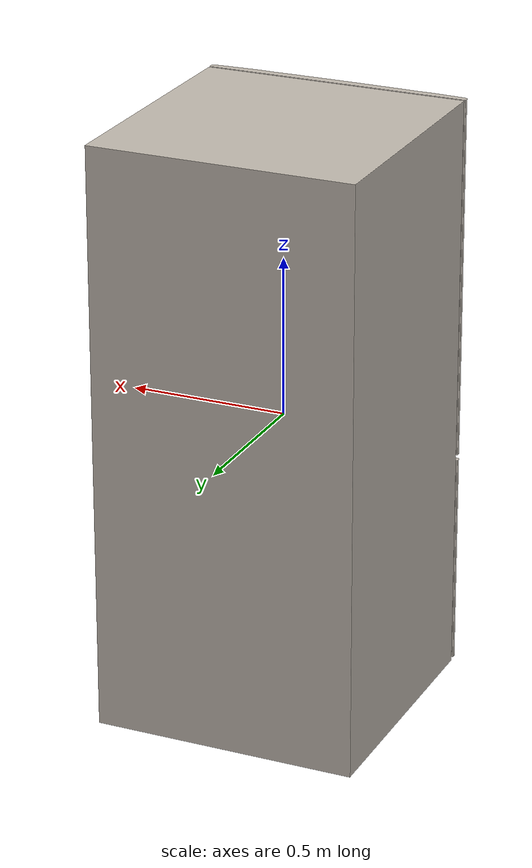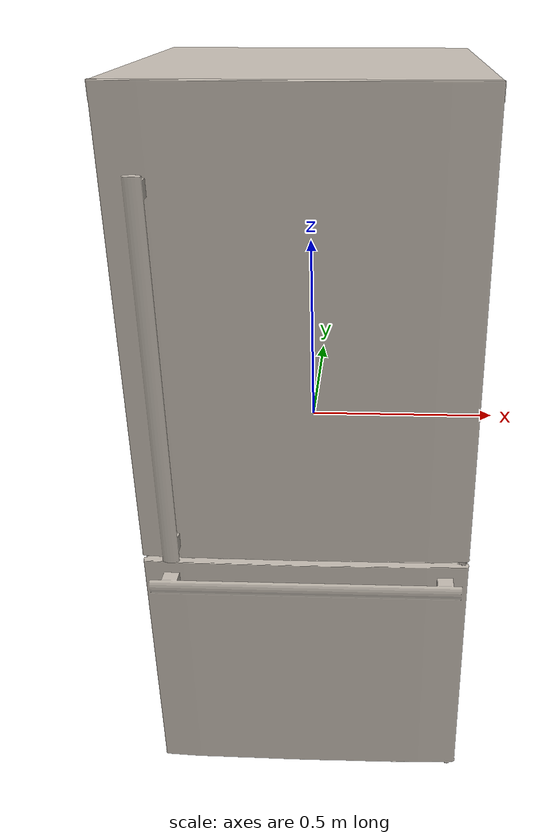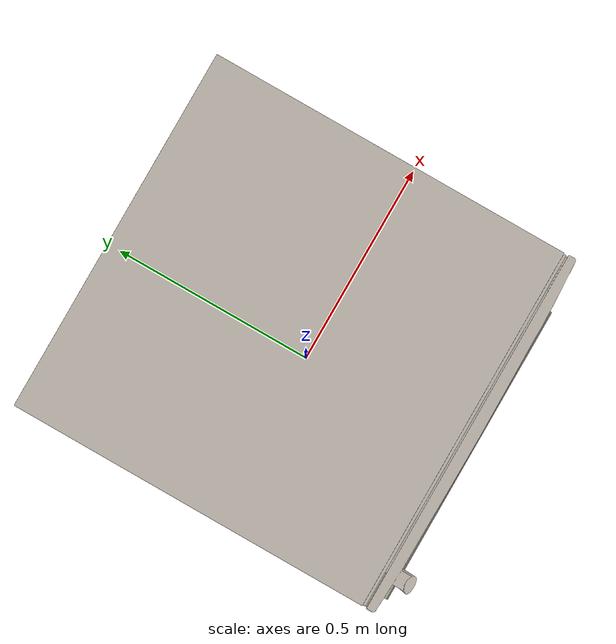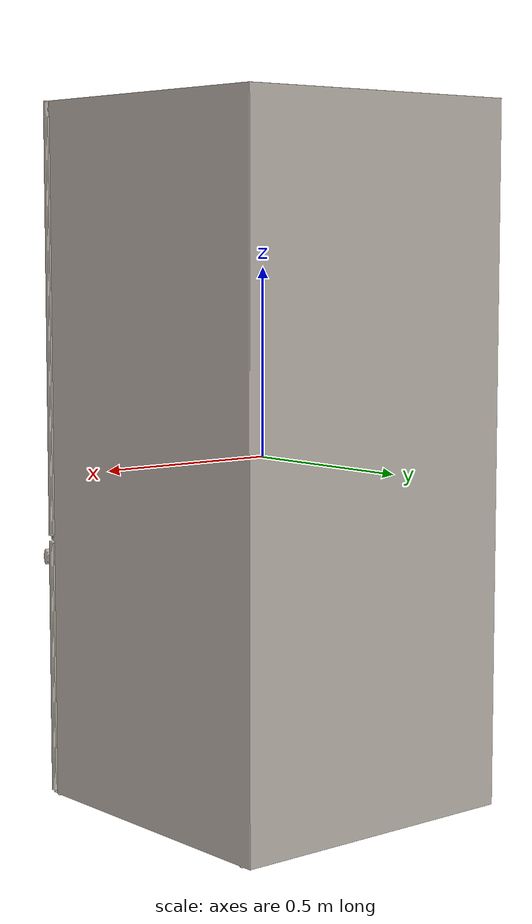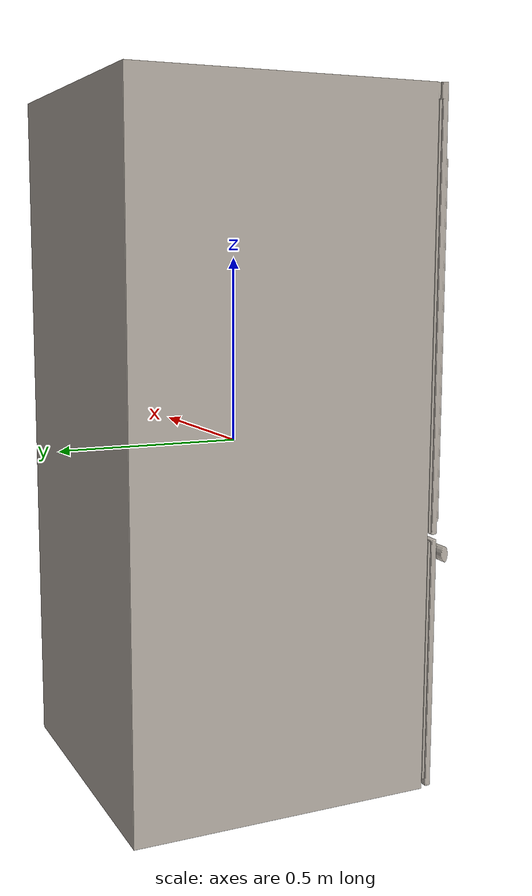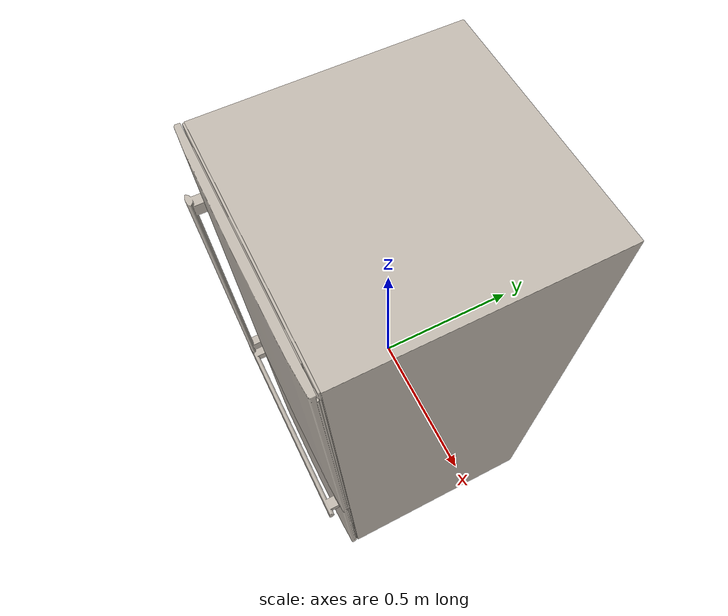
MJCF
<?xml version='1.0' encoding='UTF-8'?>
<mujoco model="model">
  <option timestep="0.002" gravity="0.0 0.0 -9.81"/>
  <compiler angle="radian"/>
  <asset>
    <mesh file="visuals/freezer0.obj" name="freezer0_vis"/>
    <mesh file="visuals/fridge_door.obj" name="fridge_door_vis"/>
    <mesh file="visuals/fridge_door_Clear.obj" name="fridge_door_Clear_vis"/>
    <mesh file="visuals/fridge_drawer0.obj" name="fridge_drawer0_vis"/>
    <mesh file="visuals/Body001.obj" name="Body001_vis"/>
    <mesh file="visuals/Body001_Clear.obj" name="Body001_Clear_vis"/>
    <texture file="visuals/T_BC001.png" name="Body001_material" type="2d"/>
    <material name="Body001_material" rgba="1 1 1 1.0" texture="Body001_material" shininess="0.2512328028678894" specular="2"/>
    <texture file="visuals/T_BC001.png" name="freezer0_material" type="2d"/>
    <material name="freezer0_material" rgba="1 1 1 1.0" texture="freezer0_material" shininess="0.2512328028678894" specular="2"/>
    <texture file="visuals/T_BC001.png" name="fridge_door_material" type="2d"/>
    <material name="fridge_door_material" rgba="1 1 1 1.0" texture="fridge_door_material" shininess="0.2512328028678894" specular="2"/>
    <texture file="visuals/T_BC001.png" name="fridge_door_Clear_material" type="2d"/>
    <material name="fridge_door_Clear_material" rgba="1 1 1 0.4593496024608612" texture="fridge_door_Clear_material" shininess="0.2512328028678894" specular="0.3103448502657381"/>
    <texture file="visuals/T_BC001.png" name="fridge_drawer0_material" type="2d"/>
    <material name="fridge_drawer0_material" rgba="1 1 1 1.0" texture="fridge_drawer0_material" shininess="0.2512328028678894" specular="0.3103448502657381"/>
    <texture file="visuals/T_BC001.png" name="Body001_Clear_material" type="2d"/>
    <material name="Body001_Clear_material" rgba="1 1 1 0.4593496024608612" texture="Body001_Clear_material" shininess="0.2512328028678894" specular="0.3103448502657381"/>
  </asset>
  <default>
    <default class="visual">
      <geom conaffinity="0" contype="0" group="1" type="mesh"/>
    </default>
    <default class="collision">
      <geom group="0" rgba="0.5 0 0 0.5"/>
    </default>
    <default class="spawn">
      <geom group="0" rgba="1 1 1 0.5" contype="0" conaffinity="0"/>
      <site group="0" rgba="1 1 1 0.5"/>
    </default>
    <default class="region">
      <geom group="1" conaffinity="0" contype="0" rgba="0 1 0 0"/>
    </default>
  </default>
  <worldbody>
    <body>
      <body name="object">
        <geom mesh="Body001_vis" type="mesh" solimp="0.998 0.998 0.001" solref="0.001 1" friction="0.95 0.3 0.1" class="visual" material="Body001_material"/>
        <geom class="collision" type="box" pos="-0.00511091 0.08947595 0.09717202" size="0.3139893114566803 0.24990147352218628 0.008324876427650452" quat="1.0 0.0 0.0 0.0"/>
        <geom class="collision" type="box" pos="-0.00000000 -0.28853544 -0.73677176" size="0.3608230650424957 0.03863765671849251 0.045791447162628174" quat="1.0 0.0 0.0 0.0"/>
        <geom class="collision" type="box" pos="-0.00000001 0.06475680 -0.72337359" size="0.3608230650424957 0.3227725625038147 0.05889467895030975" quat="1.0 0.0 0.0 0.0"/>
        <geom class="collision" type="box" pos="-0.33395419 0.06999357 0.05134173" size="0.02686884254217148 0.31753575801849365 0.7311564683914185" quat="1.0 0.0 0.0 0.0"/>
        <geom class="collision" type="box" pos="-0.33456406 0.06021575 0.05137427" size="0.026258982717990875 0.31831058859825134 0.731188952922821" quat="1.0 0.0 0.0 0.0"/>
        <geom class="collision" type="box" pos="0.00624307 0.36172522 -0.00000001" size="0.3392483592033386 0.02580416575074196 0.7825632691383362" quat="1.0 0.0 0.0 0.0"/>
        <geom class="collision" type="box" pos="0.00624307 0.06012071 0.75729752" size="0.3392483592033386 0.3184056282043457 0.025265656411647797" quat="1.0 0.0 0.0 0.0"/>
        <geom class="collision" type="box" pos="0.00624317 0.07027246 0.41959757" size="0.3392483592033386 0.30825406312942505 0.009665601886808872" quat="1.0 0.0 0.0 0.0"/>
        <geom class="collision" type="box" pos="0.00624318 0.06092919 -0.13477103" size="0.3392483592033386 0.3175971806049347 0.029721222817897797" quat="1.0 0.0 0.0 0.0"/>
        <geom class="collision" type="box" pos="0.33425725 0.06471726 0.05134173" size="0.026565808802843094 0.3228120803833008 0.7311564683914185" quat="1.0 0.0 0.0 0.0"/>
        <geom class="collision" type="box" pos="-0.00023428 0.03899949 -0.55810827" size="0.3107222020626068 0.2534886598587036 0.011059719137847424" quat="1.0 0.0 0.0 0.0"/>
        <geom class="collision" type="box" pos="-0.29989699 0.03899949 -0.55810827" size="0.011059720069169998 0.2534886598587036 0.011059719137847424" quat="1.0 0.0 0.0 0.0"/>
        <geom class="collision" type="box" pos="0.30164531 0.08884861 0.07736821" size="0.00690891919657588 0.24843285977840424 0.012981380335986614" quat="1.0 0.0 0.0 0.0"/>
        <geom class="collision" type="box" pos="-0.30206561 0.08884861 0.07736821" size="0.00690891919657588 0.24843285977840424 0.012981380335986614" quat="1.0 0.0 0.0 0.0"/>
        <body name="freezer0">
          <geom class="region" name="reg_freezer0" type="box" pos="-0.00042007500000001974 -0.042963265 -0.349888735" size="0.284817665 0.216096675 0.142165565"/>
          <joint axis="0.0 -1.0 0.0" pos="-0.00163311 -0.09853267 -0.41313696" limited="true" name="freezer0_door_joint" range="0.0 0.4" type="slide" damping="1" frictionloss="1" armature=".01" stiffness="0.05"/>
          <geom mesh="freezer0_vis" type="mesh" solimp="0.998 0.998 0.001" solref="0.001 1" friction="0.95 0.3 0.1" class="visual" material="freezer0_material"/>
          <geom class="collision" type="box" pos="-0.00055696 -0.05026060 -0.52058822" size="0.2981772720813751 0.23451752960681915 0.023037275299429893" quat="1.0 0.0 0.0 0.0"/>
          <geom class="collision" type="box" pos="-0.00055697 0.18577441 -0.37336591" size="0.29817792773246765 0.007060040719807148 0.1702624410390854" quat="1.0 0.0 0.0 0.0"/>
          <geom class="collision" type="box" pos="0.29598236 -0.04575838 -0.37345785" size="0.005975137464702129 0.23706687986850739 0.1701703816652298" quat="1.0 0.0 0.0 0.0"/>
          <geom class="collision" type="box" pos="-0.29741129 -0.04504291 -0.37239751" size="0.006359423510730267 0.23668992519378662 0.17123116552829742" quat="1.0 0.0 0.0 0.0"/>
          <geom class="collision" type="box" pos="-0.01024702 -0.30360731 -0.41248447" size="0.3505760431289673 0.01985563337802887 0.27512127161026" quat="1.0 0.0 0.0 0.0" name="freezer0_door_main"/>
          <geom class="collision" type="cylinder" pos="0.00642099 -0.37525945 -0.18981722" size="0.012269314378499985 0.27285119891166687" quat="0.7071068286895752 -0.0 0.7071067690849304 0.0" name="freezer0_door_handle_main"/>
          <geom class="collision" type="cylinder" pos="0.25871021 -0.35181277 -0.18970039" size="0.009706346318125725 0.018567001447081566" quat="0.5000000596046448 0.5 0.5 -0.4999999701976776" name="freezer0_door_handle_1"/>
          <geom class="collision" type="cylinder" pos="-0.24015623 -0.35181277 -0.18970039" size="0.009706346318125725 0.018567001447081566" quat="0.5000000596046448 0.5 0.5 -0.4999999701976776" name="freezer0_door_handle_2"/>
        </body>
        <body name="fridge_door">
          <joint axis="0.0 0.0 1.0" pos="0.32232556 -0.30018737 0.31741405" limited="true" name="fridge_door_joint" range="0.0 1.5707963267948966" type="hinge" damping="1" frictionloss="1" armature=".01" stiffness="0.05"/>
          <geom mesh="fridge_door_vis" type="mesh" solimp="0.998 0.998 0.001" solref="0.001 1" friction="0.95 0.3 0.1" class="visual" material="fridge_door_material"/>
          <geom class="collision" type="box" pos="0.00186146 -0.22737975 0.58004135" size="0.2425309121608734 0.0477554090321064 0.002827820833772421" quat="1.0 0.0 0.0 0.0"/>
          <geom class="collision" type="box" pos="0.00186122 -0.18004657 0.60923404" size="0.24252693355083466 0.003358642803505063 0.027689138427376747" quat="1.0 0.0 0.0 0.0"/>
          <geom class="collision" type="box" pos="0.00186146 -0.27400347 0.60923404" size="0.24253199994564056 0.0011944178259000182 0.02768944762647152" quat="1.0 0.0 0.0 0.0"/>
          <geom class="collision" type="box" pos="0.24276346 -0.22668261 0.60923404" size="0.002283500973135233 0.0475623793900013 0.027689456939697266" quat="1.0 0.0 0.0 0.0"/>
          <geom class="collision" type="box" pos="-0.24081883 -0.22699351 0.60923404" size="0.002009796677157283 0.047562457621097565 0.027689456939697266" quat="1.0 0.0 0.0 0.0"/>
          <geom class="collision" type="box" pos="0.00186122 -0.22737975 0.27155459" size="0.2425336241722107 0.047755803912878036 0.0028278136160224676" quat="1.0 0.0 0.0 0.0"/>
          <geom class="collision" type="box" pos="0.00186146 -0.18004657 0.30074728" size="0.24253025650978088 0.003358678426593542 0.02768918313086033" quat="1.0 0.0 0.0 0.0"/>
          <geom class="collision" type="box" pos="0.00186122 -0.27400347 0.30074728" size="0.24253469705581665 0.0011944274883717299 0.02768944948911667" quat="1.0 0.0 0.0 0.0"/>
          <geom class="collision" type="box" pos="0.24276346 -0.22668261 0.30074728" size="0.002283514244481921 0.047562770545482635 0.027689453214406967" quat="1.0 0.0 0.0 0.0"/>
          <geom class="collision" type="box" pos="-0.24081883 -0.22699351 0.30074728" size="0.002009809948503971 0.0475628487765789 0.02768944948911667" quat="1.0 0.0 0.0 0.0"/>
          <geom class="collision" type="box" pos="0.00186146 -0.22718454 0.10140303" size="0.24253632128238678 0.047756195068359375 0.002827803138643503" quat="1.0 0.0 0.0 0.0"/>
          <geom class="collision" type="box" pos="0.00186122 -0.17819709 0.13059568" size="0.24253356456756592 0.003358714282512665 0.027689222246408463" quat="1.0 0.0 0.0 0.0"/>
          <geom class="collision" type="box" pos="0.00186146 -0.27277484 0.13059568" size="0.24253740906715393 0.0011944371508434415 0.02768944948911667" quat="1.0 0.0 0.0 0.0"/>
          <geom class="collision" type="box" pos="0.24276346 -0.22648740 0.13059568" size="0.002283531939610839 0.04756316542625427 0.02768944948911667" quat="1.0 0.0 0.0 0.0"/>
          <geom class="collision" type="box" pos="-0.24081883 -0.22679830 0.13059568" size="0.0020098253153264523 0.04756324365735054 0.027689451351761818" quat="1.0 0.0 0.0 0.0"/>
          <geom class="collision" type="box" pos="-0.01024702 -0.30360731 0.32540119" size="0.3505760431289673 0.01985563337802887 0.4571620523929596" quat="1.0 0.0 0.0 0.0" name="fridge_door_main"/>
          <geom class="collision" type="cylinder" pos="-0.27540955 -0.35181277 0.04567851" size="0.009706346318125725 0.018567001447081566" quat="0.7071068286895752 0.7071067690849304 0.0 0.0" name="fridge_door_handle_1"/>
          <geom class="collision" type="cylinder" pos="-0.27540955 -0.35181277 0.62768883" size="0.009706346318125725 0.018567001447081566" quat="0.7071068286895752 0.7071067690849304 0.0 0.0" name="fridge_door_handle_2"/>
          <geom class="collision" type="cylinder" pos="-0.27529272 -0.37525945 0.33382767" size="0.012269309721887112 0.314423143863678" quat="1.0 0.0 0.0 0.0" name="fridge_door_handle_main"/>
          <body name="fridge_door_Clear">
            <geom mesh="fridge_door_Clear_vis" type="mesh" solimp="0.998 0.998 0.001" solref="0.001 1" friction="0.95 0.3 0.1" class="visual" material="fridge_door_Clear_material"/>
            <geom class="collision" type="box" pos="0.00186146 -0.22737975 0.58004135" size="0.2425309121608734 0.0477554090321064 0.002827820833772421" quat="1.0 0.0 0.0 0.0"/>
            <geom class="collision" type="box" pos="0.00186122 -0.18004657 0.60923404" size="0.24252693355083466 0.003358642803505063 0.027689138427376747" quat="1.0 0.0 0.0 0.0"/>
            <geom class="collision" type="box" pos="0.00186146 -0.27400347 0.60923404" size="0.24253199994564056 0.0011944178259000182 0.02768944762647152" quat="1.0 0.0 0.0 0.0"/>
            <geom class="collision" type="box" pos="0.24276346 -0.22668261 0.60923404" size="0.002283500973135233 0.0475623793900013 0.027689456939697266" quat="1.0 0.0 0.0 0.0"/>
            <geom class="collision" type="box" pos="-0.24081883 -0.22699351 0.60923404" size="0.002009796677157283 0.047562457621097565 0.027689456939697266" quat="1.0 0.0 0.0 0.0"/>
            <geom class="collision" type="box" pos="0.00186122 -0.22737975 0.27155459" size="0.2425336241722107 0.047755803912878036 0.0028278136160224676" quat="1.0 0.0 0.0 0.0"/>
            <geom class="collision" type="box" pos="0.00186146 -0.18004657 0.30074728" size="0.24253025650978088 0.003358678426593542 0.02768918313086033" quat="1.0 0.0 0.0 0.0"/>
            <geom class="collision" type="box" pos="0.00186122 -0.27400347 0.30074728" size="0.24253469705581665 0.0011944274883717299 0.02768944948911667" quat="1.0 0.0 0.0 0.0"/>
            <geom class="collision" type="box" pos="0.24276346 -0.22668261 0.30074728" size="0.002283514244481921 0.047562770545482635 0.027689453214406967" quat="1.0 0.0 0.0 0.0"/>
            <geom class="collision" type="box" pos="-0.24081883 -0.22699351 0.30074728" size="0.002009809948503971 0.0475628487765789 0.02768944948911667" quat="1.0 0.0 0.0 0.0"/>
            <geom class="collision" type="box" pos="0.00186146 -0.22718454 0.10140303" size="0.24253632128238678 0.047756195068359375 0.002827803138643503" quat="1.0 0.0 0.0 0.0"/>
            <geom class="collision" type="box" pos="0.00186122 -0.17819709 0.13059568" size="0.24253356456756592 0.003358714282512665 0.027689222246408463" quat="1.0 0.0 0.0 0.0"/>
            <geom class="collision" type="box" pos="0.00186146 -0.27277484 0.13059568" size="0.24253740906715393 0.0011944371508434415 0.02768944948911667" quat="1.0 0.0 0.0 0.0"/>
            <geom class="collision" type="box" pos="0.24276346 -0.22648740 0.13059568" size="0.002283531939610839 0.04756316542625427 0.02768944948911667" quat="1.0 0.0 0.0 0.0"/>
            <geom class="collision" type="box" pos="-0.24081883 -0.22679830 0.13059568" size="0.0020098253153264523 0.04756324365735054 0.027689451351761818" quat="1.0 0.0 0.0 0.0"/>
          </body>
        </body>
        <body name="fridge_drawer0">
          <geom class="region" name="reg_fridge_drawer0" type="box" pos="4.169500000000825e-05 0.088125175 0.010337505" size="0.262644065 0.215155135 0.05550229500000001"/>
          <joint axis="0.0 -1.0 0.0" pos="-0.00107992 0.07222361 -0.01740865" limited="true" name="fridge_drawer0_joint" range="0.0 0.5" type="slide" damping="1" frictionloss="1" armature=".01" stiffness="0.05"/>
          <geom mesh="fridge_drawer0_vis" type="mesh" solimp="0.998 0.998 0.001" solref="0.001 1" friction="0.95 0.3 0.1" class="visual" material="fridge_drawer0_material"/>
          <geom class="collision" type="box" pos="0.27806252 0.08509061 -0.01255758" size="0.00956681091338396 0.22557300329208374 0.08353971689939499" quat="1.0 0.0 0.0 0.0"/>
          <geom class="collision" type="box" pos="-0.00087128 0.32116116 -0.00813519" size="0.2874000668525696 0.011887706816196442 0.07921211421489716" quat="1.0 0.0 0.0 0.0"/>
          <geom class="collision" type="box" pos="-0.00072332 -0.14559288 -0.01168421" size="0.28731176257133484 0.012720695696771145 0.08273864537477493" quat="1.0 0.0 0.0 0.0"/>
          <geom class="collision" type="box" pos="-0.27867419 0.08509061 -0.01255757" size="0.010321857407689095 0.22557325661182404 0.08353979885578156" quat="1.0 0.0 0.0 0.0"/>
          <geom class="collision" type="box" pos="-0.00098598 0.08774692 -0.07649516" size="0.2874678373336792 0.24495409429073334 0.025454672053456306" quat="1.0 0.0 0.0 0.0"/>
          <geom class="collision" type="box" pos="-0.00110805 -0.17095762 0.06356654" size="0.2850056290626526 0.01721375808119774 0.005844409577548504" quat="1.0 0.0 0.0 0.0"/>
          <geom class="collision" type="box" pos="-0.00110805 -0.18416076 0.04510998" size="0.2850056290626526 0.004010598175227642 0.013608235865831375" quat="1.0 0.0 0.0 0.0"/>
        </body>
        <body name="Body001_Clear">
          <geom mesh="Body001_Clear_vis" type="mesh" solimp="0.998 0.998 0.001" solref="0.001 1" friction="0.95 0.3 0.1" class="visual" material="Body001_Clear_material"/>
        </body>
        <geom class="region" name="reg_fridge_shelf0" type="box" pos="0.0002295100000000161 0.086959295 0.257840315" size="0.30181746 0.242514575 0.14674124500000002"/>
        <geom class="region" name="reg_fridge_shelf1" type="box" pos="0.0001979750000000169 0.08289083 0.58068389" size="0.301766735 0.24658304 0.14575130999999997"/>
        <geom class="region" name="reg_main" type="box" pos="-5.000000025123796e-09 0.025776455000000004 0.0" size="0.361823065 0.36275289499999996 0.78356321"/>
      </body>
    </body>
  </worldbody>
  <actuator>
    <motor name="freezer0_door_joint_actuator" joint="freezer0_door_joint" gear="50"/>
    <motor name="fridge_door_joint_actuator" joint="fridge_door_joint" gear="50"/>
    <motor name="fridge_drawer0_joint_actuator" joint="fridge_drawer0_joint" gear="50"/>
  </actuator>
</mujoco>
